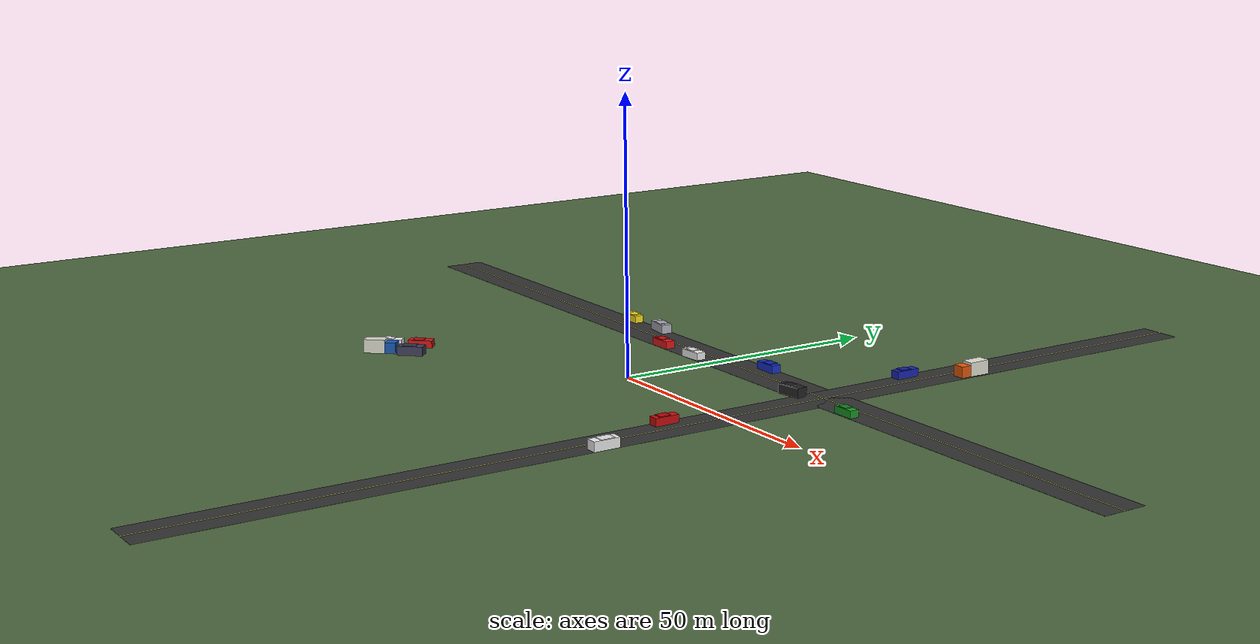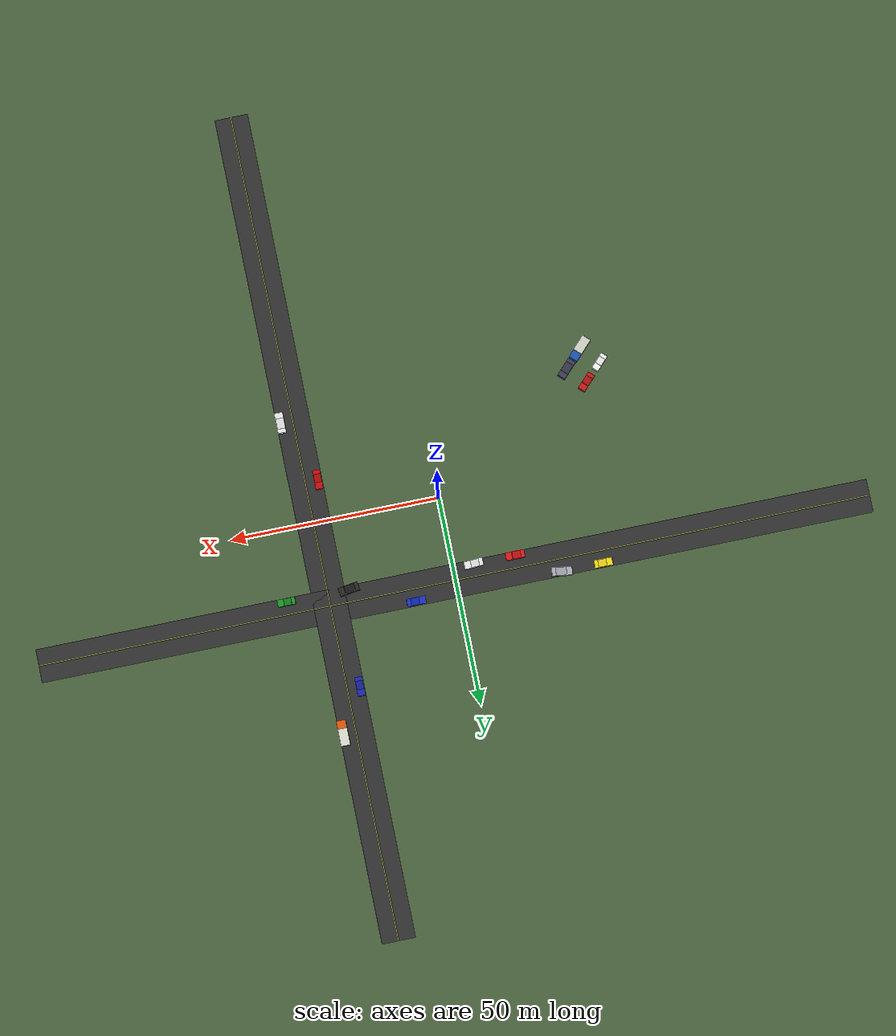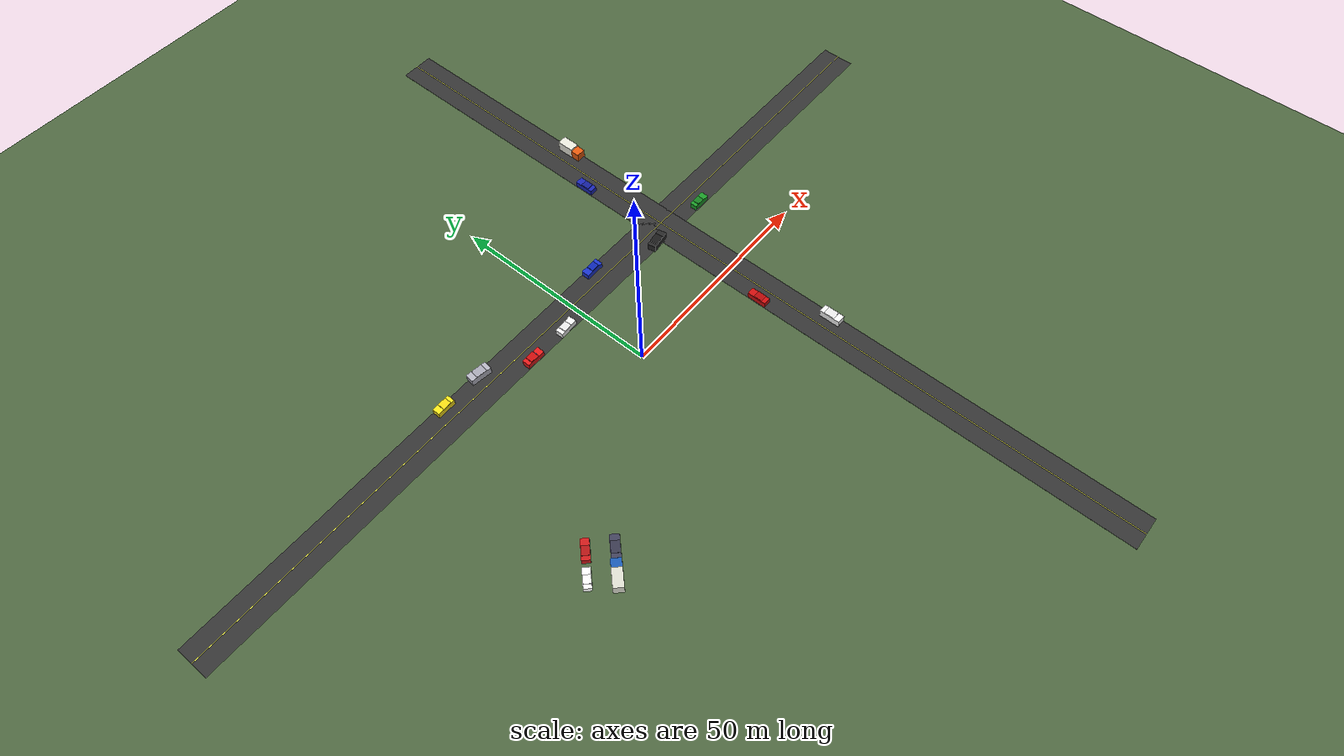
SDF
<sdf version="1.9">
 <world name="drone_surveillance">
  <physics name="1ms" type="ignore">
   <max_step_size>0.001</max_step_size>
   <real_time_factor>1.0</real_time_factor>
  </physics>
  <plugin filename="gz-sim-physics-system" name="gz::sim::systems::Physics"/>
  <plugin filename="gz-sim-sensors-system" name="gz::sim::systems::Sensors">
   <render_engine>ogre2</render_engine>
  </plugin>
  <plugin filename="gz-sim-user-commands-system" name="gz::sim::systems::UserCommands"/>
  <plugin filename="gz-sim-scene-broadcaster-system" name="gz::sim::systems::SceneBroadcaster"/>
  <plugin filename="gz-sim-imu-system" name="gz::sim::systems::Imu"/>
  <plugin filename="gz-sim-navsat-system" name="gz::sim::systems::NavSat"/>
  <scene><ambient>1.0 1.0 1.0</ambient><background>0.6 0.8 1.0</background></scene>
  <spherical_coordinates>
   <latitude_deg>50.450001</latitude_deg>
   <longitude_deg>30.523333</longitude_deg>
   <elevation>180</elevation>
   <heading_deg>0</heading_deg>
   <surface_model>EARTH_WGS84</surface_model>
  </spherical_coordinates>
  <light type="directional" name="sun">
   <pose>0 0 100 0 0 0</pose>
   <diffuse>0.9 0.9 0.9 1</diffuse>
   <specular>0.5 0.5 0.5 1</specular>
   <attenuation>
    <range>1000</range>
    <constant>0.9</constant>
    <linear>0.01</linear>
    <quadratic>0.001</quadratic>
   </attenuation>
   <direction>-0.5 0.3 -0.9</direction>
  </light>
  <model name="ground_plane">
   <static>true</static>
   <link name="link">
    <collision name="collision">
     <geometry><plane><normal>0 0 1</normal><size>500 500</size></plane></geometry>
    </collision>
    <visual name="visual">
     <geometry><plane><normal>0 0 1</normal><size>500 500</size></plane></geometry>
     <material><ambient>0.3 0.4 0.25 1</ambient><diffuse>0.3 0.4 0.25 1</diffuse></material>
    </visual>
   </link>
  </model>
  <model name="road_ew">
   <static>true</static>
   <link name="link">
    <visual name="v">
     <pose>0 20 0.005 0 0 0</pose>
     <geometry><box><size>200 8 0.01</size></box></geometry>
     <material><ambient>0.15 0.15 0.15 1</ambient><diffuse>0.2 0.2 0.2 1</diffuse></material>
    </visual>
    <collision name="c">
     <pose>0 20 0.005 0 0 0</pose>
     <geometry><box><size>200 8 0.01</size></box></geometry>
    </collision>
   </link>
  </model>
  <model name="road_ns">
   <static>true</static>
   <link name="link">
    <visual name="v">
     <pose>30 0 0.005 0 0 0</pose>
     <geometry><box><size>8 200 0.01</size></box></geometry>
     <material><ambient>0.15 0.15 0.15 1</ambient><diffuse>0.2 0.2 0.2 1</diffuse></material>
    </visual>
    <collision name="c">
     <pose>30 0 0.005 0 0 0</pose>
     <geometry><box><size>8 200 0.01</size></box></geometry>
    </collision>
   </link>
  </model>
  <model name="line_ew">
   <static>true</static>
   <link name="l">
    <visual name="v">
     <pose>0 20 0.015 0 0 0</pose>
     <geometry><box><size>200 0.15 0.005</size></box></geometry>
     <material><ambient>1 1 0.3 1</ambient><diffuse>1 1 0.3 1</diffuse></material>
    </visual>
   </link>
  </model>
  <model name="line_ns">
   <static>true</static>
   <link name="l">
    <visual name="v">
     <pose>30 0 0.015 0 0 0</pose>
     <geometry><box><size>0.15 200 0.005</size></box></geometry>
     <material><ambient>1 1 0.3 1</ambient><diffuse>1 1 0.3 1</diffuse></material>
    </visual>
   </link>
  </model>
  <model name="car_red_1">
   <static>true</static>
   <pose>-15 17 0.7 0 0 0</pose>
   <link name="body">
    <visual name="body">
     <geometry><box><size>4.5 1.8 1.4</size></box></geometry>
     <material><ambient>0.8 0.1 0.1 1</ambient><diffuse>0.9 0.1 0.1 1</diffuse></material>
    </visual>
    <visual name="roof">
     <pose>-0.3 0 0.6 0 0 0</pose>
     <geometry><box><size>2.0 1.7 0.5</size></box></geometry>
     <material><ambient>0.7 0.05 0.05 1</ambient><diffuse>0.8 0.05 0.05 1</diffuse></material>
    </visual>
    <visual name="windshield">
     <pose>0.7 0 0.5 0 0.3 0</pose>
     <geometry><box><size>0.05 1.5 0.6</size></box></geometry>
     <material><ambient>0.3 0.5 0.7 1</ambient><diffuse>0.3 0.5 0.8 1</diffuse></material>
    </visual>
    <collision name="c"><geometry><box><size>4.5 1.8 1.4</size></box></geometry></collision>
   </link>
  </model>
  <model name="car_white_1">
   <static>true</static>
   <pose>-5 17 0.7 0 0 0.05</pose>
   <link name="body">
    <visual name="body">
     <geometry><box><size>4.5 1.8 1.4</size></box></geometry>
     <material><ambient>0.9 0.9 0.9 1</ambient><diffuse>0.95 0.95 0.95 1</diffuse></material>
    </visual>
    <visual name="roof">
     <pose>-0.3 0 0.6 0 0 0</pose>
     <geometry><box><size>2.0 1.7 0.5</size></box></geometry>
     <material><ambient>0.85 0.85 0.85 1</ambient><diffuse>0.9 0.9 0.9 1</diffuse></material>
    </visual>
    <collision name="c"><geometry><box><size>4.5 1.8 1.4</size></box></geometry></collision>
   </link>
  </model>
  <model name="car_blue_1">
   <static>true</static>
   <pose>10 23 0.7 0 0 3.14</pose>
   <link name="body">
    <visual name="body">
     <geometry><box><size>4.5 1.8 1.4</size></box></geometry>
     <material><ambient>0.1 0.2 0.7 1</ambient><diffuse>0.1 0.2 0.8 1</diffuse></material>
    </visual>
    <visual name="roof">
     <pose>-0.3 0 0.6 0 0 0</pose>
     <geometry><box><size>2.0 1.7 0.5</size></box></geometry>
     <material><ambient>0.05 0.15 0.6 1</ambient><diffuse>0.05 0.15 0.7 1</diffuse></material>
    </visual>
    <collision name="c"><geometry><box><size>4.5 1.8 1.4</size></box></geometry></collision>
   </link>
  </model>
  <model name="suv_black_1">
   <static>true</static>
   <pose>25 17 0.85 0 0 0.15</pose>
   <link name="body">
    <visual name="body">
     <geometry><box><size>4.8 2.0 1.7</size></box></geometry>
     <material><ambient>0.1 0.1 0.1 1</ambient><diffuse>0.15 0.15 0.15 1</diffuse></material>
    </visual>
    <visual name="roof">
     <pose>-0.2 0 0.7 0 0 0</pose>
     <geometry><box><size>2.5 1.9 0.5</size></box></geometry>
     <material><ambient>0.08 0.08 0.08 1</ambient><diffuse>0.1 0.1 0.1 1</diffuse></material>
    </visual>
    <collision name="c"><geometry><box><size>4.8 2.0 1.7</size></box></geometry></collision>
   </link>
  </model>
  <model name="suv_silver_1">
   <static>true</static>
   <pose>-25 23 0.85 0 0 3.0</pose>
   <link name="body">
    <visual name="body">
     <geometry><box><size>4.8 2.0 1.7</size></box></geometry>
     <material><ambient>0.6 0.6 0.65 1</ambient><diffuse>0.7 0.7 0.75 1</diffuse></material>
    </visual>
    <visual name="roof">
     <pose>-0.2 0 0.7 0 0 0</pose>
     <geometry><box><size>2.5 1.9 0.5</size></box></geometry>
     <material><ambient>0.55 0.55 0.6 1</ambient><diffuse>0.65 0.65 0.7 1</diffuse></material>
    </visual>
    <collision name="c"><geometry><box><size>4.8 2.0 1.7</size></box></geometry></collision>
   </link>
  </model>
  <model name="car_green_1">
   <static>true</static>
   <pose>40 17 0.7 0 0 0</pose>
   <link name="body">
    <visual name="body">
     <geometry><box><size>4.2 1.7 1.3</size></box></geometry>
     <material><ambient>0.1 0.5 0.15 1</ambient><diffuse>0.1 0.6 0.15 1</diffuse></material>
    </visual>
    <visual name="roof">
     <pose>-0.3 0 0.55 0 0 0</pose>
     <geometry><box><size>1.8 1.6 0.45</size></box></geometry>
     <material><ambient>0.08 0.4 0.12 1</ambient><diffuse>0.08 0.5 0.12 1</diffuse></material>
    </visual>
    <collision name="c"><geometry><box><size>4.2 1.7 1.3</size></box></geometry></collision>
   </link>
  </model>
  <model name="car_yellow_1">
   <static>true</static>
   <pose>-35 23 0.7 0 0 3.14</pose>
   <link name="body">
    <visual name="body">
     <geometry><box><size>4.3 1.8 1.4</size></box></geometry>
     <material><ambient>0.9 0.8 0.1 1</ambient><diffuse>1.0 0.9 0.1 1</diffuse></material>
    </visual>
    <visual name="roof">
     <pose>-0.3 0 0.6 0 0 0</pose>
     <geometry><box><size>2.0 1.7 0.5</size></box></geometry>
     <material><ambient>0.85 0.75 0.08 1</ambient><diffuse>0.95 0.85 0.08 1</diffuse></material>
    </visual>
    <collision name="c"><geometry><box><size>4.3 1.8 1.4</size></box></geometry></collision>
   </link>
  </model>
  <model name="car_red_2">
   <static>true</static>
   <pose>27 -10 0.7 0 0 1.57</pose>
   <link name="body">
    <visual name="body">
     <geometry><box><size>4.5 1.8 1.4</size></box></geometry>
     <material><ambient>0.7 0.05 0.05 1</ambient><diffuse>0.8 0.05 0.05 1</diffuse></material>
    </visual>
    <visual name="roof">
     <pose>-0.3 0 0.6 0 0 0</pose>
     <geometry><box><size>2.0 1.7 0.5</size></box></geometry>
     <material><ambient>0.6 0.03 0.03 1</ambient><diffuse>0.7 0.03 0.03 1</diffuse></material>
    </visual>
    <collision name="c"><geometry><box><size>4.5 1.8 1.4</size></box></geometry></collision>
   </link>
  </model>
  <model name="suv_white_1">
   <static>true</static>
   <pose>33 -25 0.85 0 0 -1.57</pose>
   <link name="body">
    <visual name="body">
     <geometry><box><size>4.8 2.0 1.7</size></box></geometry>
     <material><ambient>0.9 0.9 0.9 1</ambient><diffuse>0.95 0.95 0.95 1</diffuse></material>
    </visual>
    <visual name="roof">
     <pose>-0.2 0 0.7 0 0 0</pose>
     <geometry><box><size>2.5 1.9 0.5</size></box></geometry>
     <material><ambient>0.85 0.85 0.85 1</ambient><diffuse>0.9 0.9 0.9 1</diffuse></material>
    </visual>
    <collision name="c"><geometry><box><size>4.8 2.0 1.7</size></box></geometry></collision>
   </link>
  </model>
  <model name="car_blue_2">
   <static>true</static>
   <pose>27 40 0.7 0 0 1.57</pose>
   <link name="body">
    <visual name="body">
     <geometry><box><size>4.5 1.8 1.4</size></box></geometry>
     <material><ambient>0.1 0.15 0.6 1</ambient><diffuse>0.1 0.15 0.7 1</diffuse></material>
    </visual>
    <visual name="roof">
     <pose>-0.3 0 0.6 0 0 0</pose>
     <geometry><box><size>2.0 1.7 0.5</size></box></geometry>
     <material><ambient>0.08 0.12 0.5 1</ambient><diffuse>0.08 0.12 0.6 1</diffuse></material>
    </visual>
    <collision name="c"><geometry><box><size>4.5 1.8 1.4</size></box></geometry></collision>
   </link>
  </model>
  <model name="truck_1">
   <static>true</static>
   <pose>33 50 1.25 0 0 -1.57</pose>
   <link name="body">
    <visual name="cab">
     <pose>2.0 0 0 0 0 0</pose>
     <geometry><box><size>2.0 2.2 2.0</size></box></geometry>
     <material><ambient>0.8 0.3 0.05 1</ambient><diffuse>0.9 0.35 0.05 1</diffuse></material>
    </visual>
    <visual name="cargo">
     <pose>-1.0 0 0.2 0 0 0</pose>
     <geometry><box><size>4.0 2.2 2.5</size></box></geometry>
     <material><ambient>0.85 0.85 0.8 1</ambient><diffuse>0.9 0.9 0.85 1</diffuse></material>
    </visual>
    <collision name="c"><geometry><box><size>6.0 2.2 2.5</size></box></geometry></collision>
   </link>
  </model>
  <model name="park_red">
   <static>true</static>
   <pose>-40 -20 0.7 0 0 0.8</pose>
   <link name="body">
    <visual name="body">
     <geometry><box><size>4.5 1.8 1.4</size></box></geometry>
     <material><ambient>0.7 0.1 0.1 1</ambient><diffuse>0.8 0.1 0.1 1</diffuse></material>
    </visual>
    <visual name="roof">
     <pose>-0.3 0 0.6 0 0 0</pose>
     <geometry><box><size>2.0 1.7 0.5</size></box></geometry>
     <material><ambient>0.6 0.08 0.08 1</ambient><diffuse>0.7 0.08 0.08 1</diffuse></material>
    </visual>
    <collision name="c"><geometry><box><size>4.5 1.8 1.4</size></box></geometry></collision>
   </link>
  </model>
  <model name="park_white">
   <static>true</static>
   <pose>-44 -24 0.7 0 0 0.8</pose>
   <link name="body">
    <visual name="body">
     <geometry><box><size>4.2 1.7 1.3</size></box></geometry>
     <material><ambient>0.95 0.95 0.95 1</ambient><diffuse>1.0 1.0 1.0 1</diffuse></material>
    </visual>
    <visual name="roof">
     <pose>-0.3 0 0.55 0 0 0</pose>
     <geometry><box><size>1.8 1.6 0.45</size></box></geometry>
     <material><ambient>0.9 0.9 0.9 1</ambient><diffuse>0.95 0.95 0.95 1</diffuse></material>
    </visual>
    <collision name="c"><geometry><box><size>4.2 1.7 1.3</size></box></geometry></collision>
   </link>
  </model>
  <model name="park_suv">
   <static>true</static>
   <pose>-36 -24 0.85 0 0 0.8</pose>
   <link name="body">
    <visual name="body">
     <geometry><box><size>4.8 2.0 1.7</size></box></geometry>
     <material><ambient>0.2 0.2 0.3 1</ambient><diffuse>0.25 0.25 0.35 1</diffuse></material>
    </visual>
    <visual name="roof">
     <pose>-0.2 0 0.7 0 0 0</pose>
     <geometry><box><size>2.5 1.9 0.5</size></box></geometry>
     <material><ambient>0.18 0.18 0.25 1</ambient><diffuse>0.22 0.22 0.3 1</diffuse></material>
    </visual>
    <collision name="c"><geometry><box><size>4.8 2.0 1.7</size></box></geometry></collision>
   </link>
  </model>
  <model name="park_truck">
   <static>true</static>
   <pose>-40 -28 1.25 0 0 0.8</pose>
   <link name="body">
    <visual name="cab">
     <pose>2.0 0 0 0 0 0</pose>
     <geometry><box><size>2.0 2.2 2.0</size></box></geometry>
     <material><ambient>0.1 0.3 0.6 1</ambient><diffuse>0.1 0.35 0.7 1</diffuse></material>
    </visual>
    <visual name="cargo">
     <pose>-1.0 0 0.2 0 0 0</pose>
     <geometry><box><size>4.0 2.2 2.5</size></box></geometry>
     <material><ambient>0.8 0.8 0.75 1</ambient><diffuse>0.85 0.85 0.8 1</diffuse></material>
    </visual>
    <collision name="c"><geometry><box><size>6.0 2.2 2.5</size></box></geometry></collision>
   </link>
  </model>
 </world>
</sdf>
